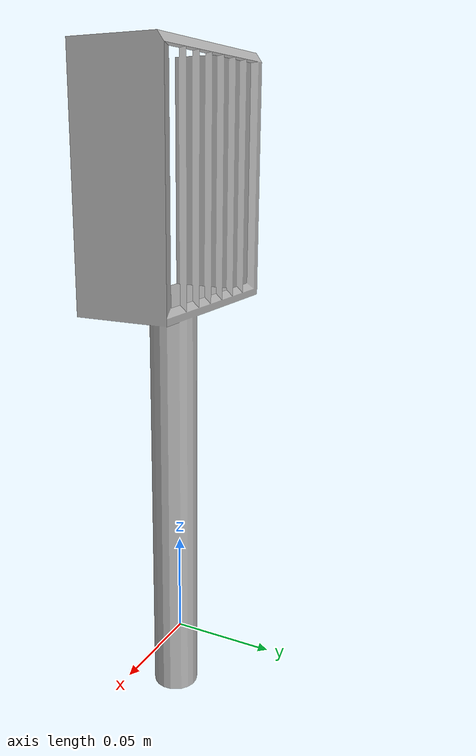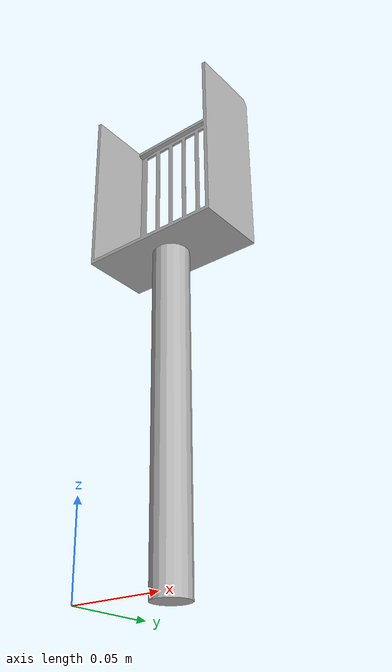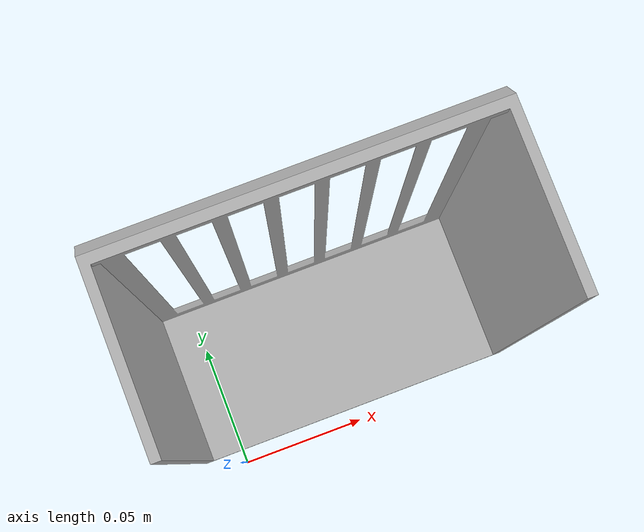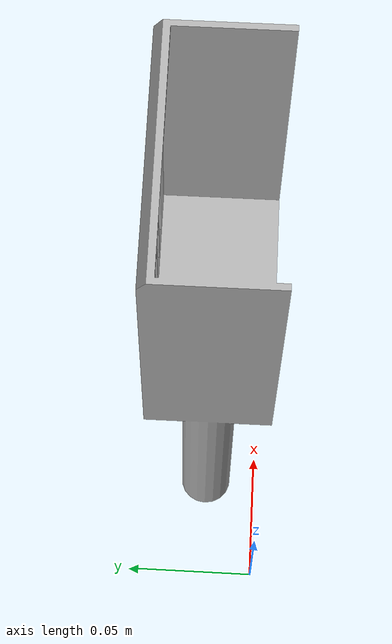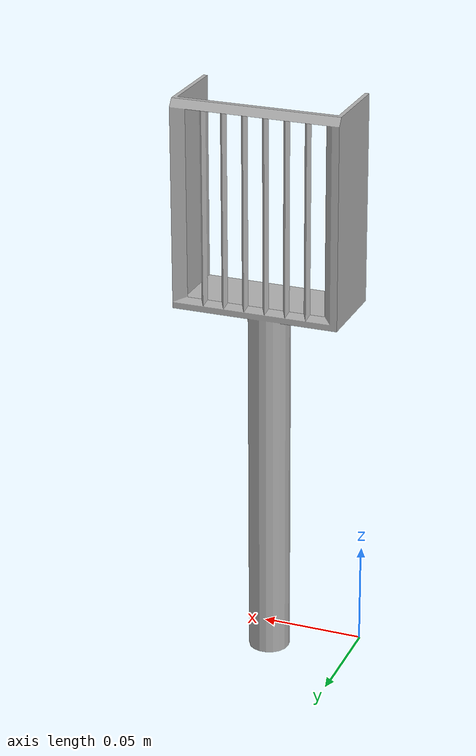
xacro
<?xml version="1.0"?>

<robot name="scoop_robot">

  <!-- Define base link -->
  <link name="base_link">
    <visual>
      <geometry>
        <mesh filename="package://pybullet/meshes/scoop/scoop_s.stl"/>
      </geometry>
      <material name="LightGrey">
        <color rgba="0.7 0.7 0.7 1.0"/>
      </material>
    </visual>
    <collision>
      <geometry>
        <mesh filename="package://pybullet/meshes/scoop/scoop_s.stl"/>
      </geometry>
    </collision>
    <inertial>
      <mass value="4.0"/>
      <origin rpy="0 0 0" xyz="0.0 0.0 0.0"/>
      <inertia ixx="0.00443333156" ixy="0.0" ixz="0.0" iyy="0.00443333156" iyz="0.0" izz="0.0072"/>
    </inertial>
  </link>

</robot>
